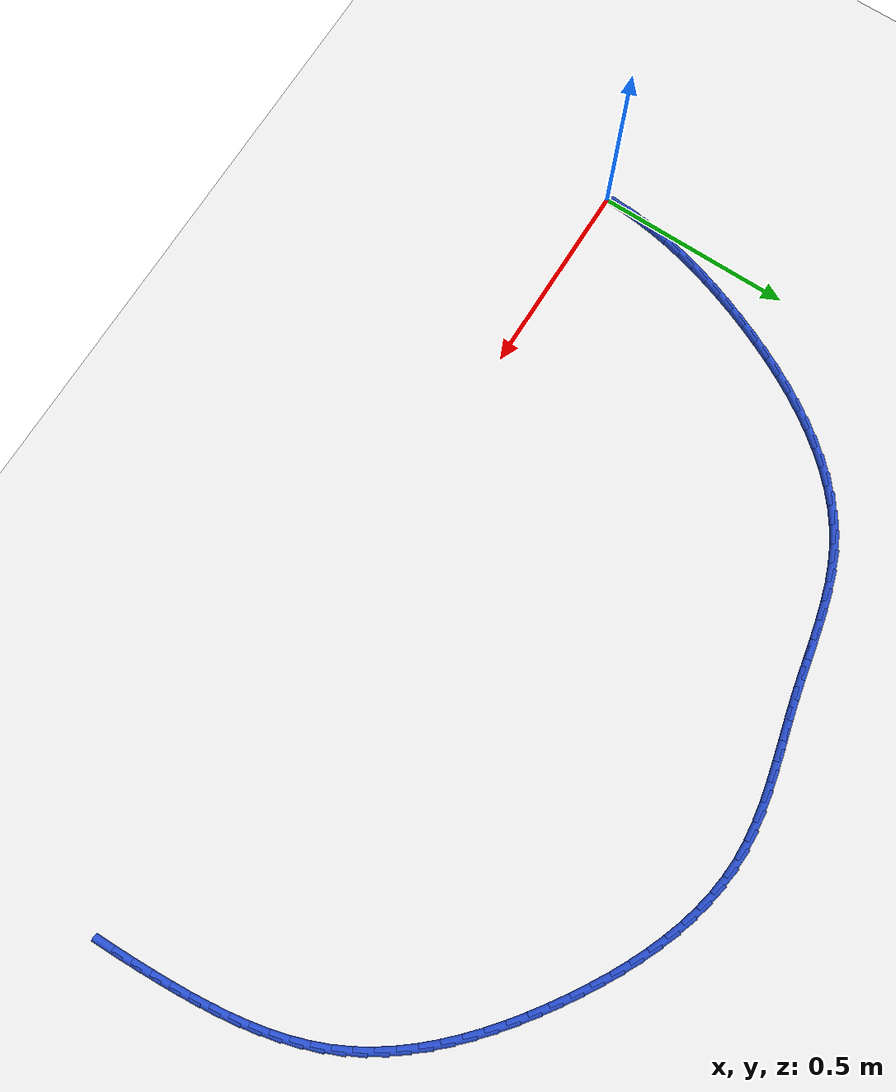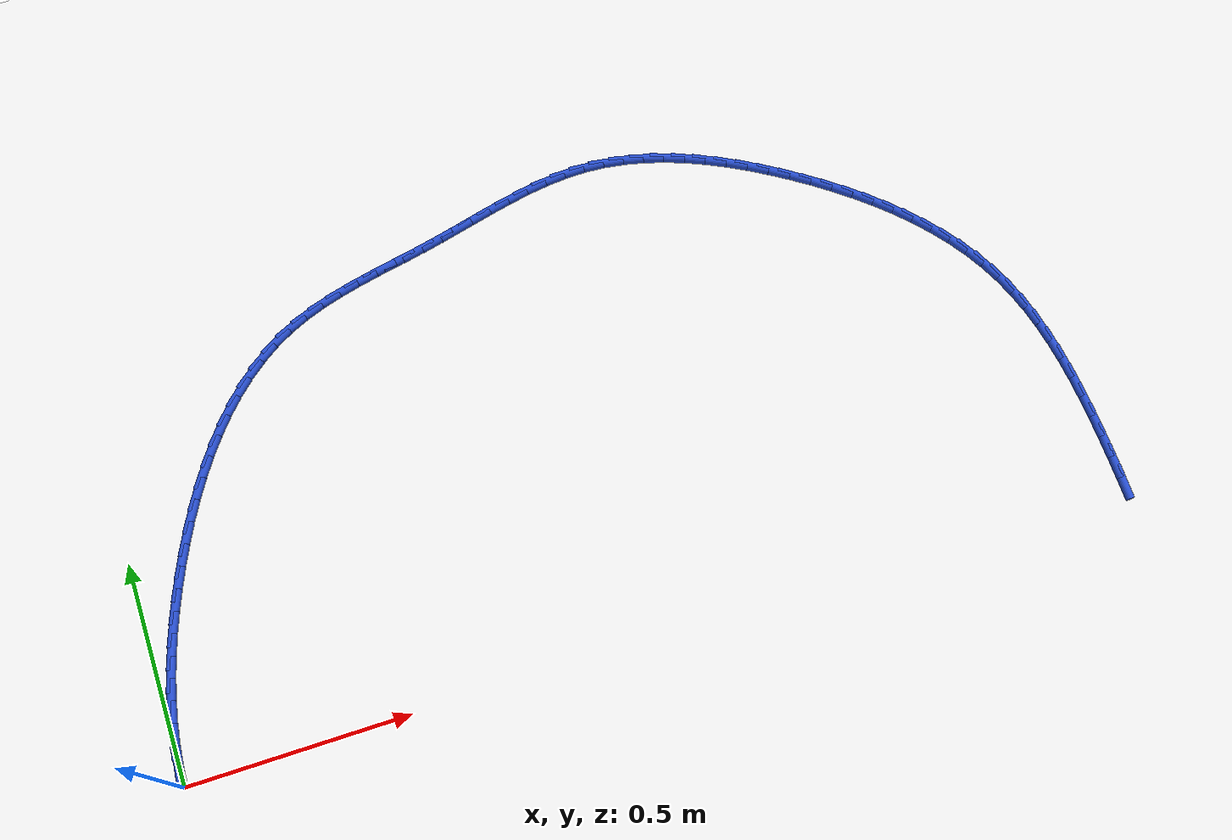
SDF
<sdf version="1.6">
 <world name="default">
  <model name="ground_plane">
   <static>1</static>
   <link name="link">
    <collision name="collision">
     <geometry><plane><normal>0 0 1</normal><size>100 100</size></plane></geometry>
     <surface><friction><ode><mu>100</mu><mu2>50</mu2></ode></friction></surface>
    </collision>
    <visual name="visual">
     <cast_shadows>0</cast_shadows>
     <geometry><plane><normal>0 0 1</normal><size>100 100</size></plane></geometry>
     <material>
      <script><uri>file://media/materials/scripts/gazebo.material</uri><name>Gazebo/WhiteGlow</name></script>
     </material>
    </visual>
   </link>
  </model>
  <model name="line">
   <link name="link_1">
    <pose>0.0019685583259757096 0.04800362464520385 0.01 0 1.57 1.479716273521104</pose>
    <collision name="collision">
     <geometry><cylinder><radius>0.01</radius><length>0.08</length></cylinder></geometry>
    </collision>
    <visual name="visual">
     <material>
      <script><name>Gazebo/Blue</name><uri>file://media/materials/scripts/gazebo.material</uri></script>
     </material>
     <geometry><cylinder><radius>0.01</radius><length>0.08</length></cylinder></geometry>
    </visual>
   </link>
   <link name="link_2">
    <pose>0.006317493180500105 0.09562000608899066 0.01 0 1.57 1.4316950958429615</pose>
    <collision name="collision">
     <geometry><cylinder><radius>0.01</radius><length>0.08</length></cylinder></geometry>
    </collision>
    <visual name="visual">
     <material>
      <script><name>Gazebo/Blue</name><uri>file://media/materials/scripts/gazebo.material</uri></script>
     </material>
     <geometry><cylinder><radius>0.01</radius><length>0.08</length></cylinder></geometry>
    </visual>
   </link>
   <link name="link_3">
    <pose>0.012936102183389237 0.14289396357088413 0.01 0 1.57 1.3860753619875683</pose>
    <collision name="collision">
     <geometry><cylinder><radius>0.01</radius><length>0.08</length></cylinder></geometry>
    </collision>
    <visual name="visual">
     <material>
      <script><name>Gazebo/Blue</name><uri>file://media/materials/scripts/gazebo.material</uri></script>
     </material>
     <geometry><cylinder><radius>0.01</radius><length>0.08</length></cylinder></geometry>
    </visual>
   </link>
   <link name="link_4">
    <pose>0.02171368295445912 0.18987031633040816 0.01 0 1.57 1.3431139589828611</pose>
    <collision name="collision">
     <geometry><cylinder><radius>0.01</radius><length>0.08</length></cylinder></geometry>
    </collision>
    <visual name="visual">
     <material>
      <script><name>Gazebo/Blue</name><uri>file://media/materials/scripts/gazebo.material</uri></script>
     </material>
     <geometry><cylinder><radius>0.01</radius><length>0.08</length></cylinder></geometry>
    </visual>
   </link>
   <link name="link_5">
    <pose>0.032539533113525775 0.23659388360708675 0.01 0 1.57 1.3029972884537147</pose>
    <collision name="collision">
     <geometry><cylinder><radius>0.01</radius><length>0.08</length></cylinder></geometry>
    </collision>
    <visual name="visual">
     <material>
      <script><name>Gazebo/Blue</name><uri>file://media/materials/scripts/gazebo.material</uri></script>
     </material>
     <geometry><cylinder><radius>0.01</radius><length>0.08</length></cylinder></geometry>
    </visual>
   </link>
   <link name="link_6">
    <pose>0.04530295028040521 0.2831094846404437 0.01 0 1.57 1.2658463277626237</pose>
    <collision name="collision">
     <geometry><cylinder><radius>0.01</radius><length>0.08</length></cylinder></geometry>
    </collision>
    <visual name="visual">
     <material>
      <script><name>Gazebo/Blue</name><uri>file://media/materials/scripts/gazebo.material</uri></script>
     </material>
     <geometry><cylinder><radius>0.01</radius><length>0.08</length></cylinder></geometry>
    </visual>
   </link>
   <link name="link_7">
    <pose>0.05989323207491339 0.32946193867000284 0.01 0 1.57 1.2317245821310854</pose>
    <collision name="collision">
     <geometry><cylinder><radius>0.01</radius><length>0.08</length></cylinder></geometry>
    </collision>
    <visual name="visual">
     <material>
      <script><name>Gazebo/Blue</name><uri>file://media/materials/scripts/gazebo.material</uri></script>
     </material>
     <geometry><cylinder><radius>0.01</radius><length>0.08</length></cylinder></geometry>
    </visual>
   </link>
   <link name="link_8">
    <pose>0.0761996761168664 0.3756960649352883 0.01 0 1.57 1.2006475588033874</pose>
    <collision name="collision">
     <geometry><cylinder><radius>0.01</radius><length>0.08</length></cylinder></geometry>
    </collision>
    <visual name="visual">
     <material>
      <script><name>Gazebo/Blue</name><uri>file://media/materials/scripts/gazebo.material</uri></script>
     </material>
     <geometry><cylinder><radius>0.01</radius><length>0.08</length></cylinder></geometry>
    </visual>
   </link>
   <link name="link_9">
    <pose>0.0941115800260802 0.42185668267582377 0.01 0 1.57 1.1722129539264694</pose>
    <collision name="collision">
     <geometry><cylinder><radius>0.01</radius><length>0.08</length></cylinder></geometry>
    </collision>
    <visual name="visual">
     <material>
      <script><name>Gazebo/Blue</name><uri>file://media/materials/scripts/gazebo.material</uri></script>
     </material>
     <geometry><cylinder><radius>0.01</radius><length>0.08</length></cylinder></geometry>
    </visual>
   </link>
   <link name="link_10">
    <pose>0.11352888065028877 0.46796491665800755 0.01 0 1.57 1.1428740697160042</pose>
    <collision name="collision">
     <geometry><cylinder><radius>0.01</radius><length>0.08</length></cylinder></geometry>
    </collision>
    <visual name="visual">
     <material>
      <script><name>Gazebo/Blue</name><uri>file://media/materials/scripts/gazebo.material</uri></script>
     </material>
     <geometry><cylinder><radius>0.01</radius><length>0.08</length></cylinder></geometry>
    </visual>
   </link>
   <link name="link_11">
    <pose>0.1344474933338868 0.5138281393038654 0.01 0 1.57 1.1104981738132114</pose>
    <collision name="collision">
     <geometry><cylinder><radius>0.01</radius><length>0.08</length></cylinder></geometry>
    </collision>
    <visual name="visual">
     <material>
      <script><name>Gazebo/Blue</name><uri>file://media/materials/scripts/gazebo.material</uri></script>
     </material>
     <geometry><cylinder><radius>0.01</radius><length>0.08</length></cylinder></geometry>
    </visual>
   </link>
   <link name="link_12">
    <pose>0.15691422144329 0.5591403910455921 0.01 0 1.57 1.0746743261360279</pose>
    <collision name="collision">
     <geometry><cylinder><radius>0.01</radius><length>0.08</length></cylinder></geometry>
    </collision>
    <visual name="visual">
     <material>
      <script><name>Gazebo/Blue</name><uri>file://media/materials/scripts/gazebo.material</uri></script>
     </material>
     <geometry><cylinder><radius>0.01</radius><length>0.08</length></cylinder></geometry>
    </visual>
   </link>
   <link name="link_13">
    <pose>0.18097633478914657 0.6035946735040698 0.01 0 1.57 1.034955410138871</pose>
    <collision name="collision">
     <geometry><cylinder><radius>0.01</radius><length>0.08</length></cylinder></geometry>
    </collision>
    <visual name="visual">
     <material>
      <script><name>Gazebo/Blue</name><uri>file://media/materials/scripts/gazebo.material</uri></script>
     </material>
     <geometry><cylinder><radius>0.01</radius><length>0.08</length></cylinder></geometry>
    </visual>
   </link>
   <link name="link_14">
    <pose>0.20668110318210464 0.6468839883001797 0.01 0 1.57 0.9908417420385939</pose>
    <collision name="collision">
     <geometry><cylinder><radius>0.01</radius><length>0.08</length></cylinder></geometry>
    </collision>
    <visual name="visual">
     <material>
      <script><name>Gazebo/Blue</name><uri>file://media/materials/scripts/gazebo.material</uri></script>
     </material>
     <geometry><cylinder><radius>0.01</radius><length>0.08</length></cylinder></geometry>
    </visual>
   </link>
   <link name="link_15">
    <pose>0.2340757964328125 0.6887013370548042 0.01 0 1.57 0.9417866814003238</pose>
    <collision name="collision">
     <geometry><cylinder><radius>0.01</radius><length>0.08</length></cylinder></geometry>
    </collision>
    <visual name="visual">
     <material>
      <script><name>Gazebo/Blue</name><uri>file://media/materials/scripts/gazebo.material</uri></script>
     </material>
     <geometry><cylinder><radius>0.01</radius><length>0.08</length></cylinder></geometry>
    </visual>
   </link>
   <link name="link_16">
    <pose>0.2632076843519182 0.7287397213888243 0.01 0 1.57 0.8872112230858543</pose>
    <collision name="collision">
     <geometry><cylinder><radius>0.01</radius><length>0.08</length></cylinder></geometry>
    </collision>
    <visual name="visual">
     <material>
      <script><name>Gazebo/Blue</name><uri>file://media/materials/scripts/gazebo.material</uri></script>
     </material>
     <geometry><cylinder><radius>0.01</radius><length>0.08</length></cylinder></geometry>
    </visual>
   </link>
   <link name="link_17">
    <pose>0.29412403675007 0.7666921429231219 0.01 0 1.57 0.8265325323151879</pose>
    <collision name="collision">
     <geometry><cylinder><radius>0.01</radius><length>0.08</length></cylinder></geometry>
    </collision>
    <visual name="visual">
     <material>
      <script><name>Gazebo/Blue</name><uri>file://media/materials/scripts/gazebo.material</uri></script>
     </material>
     <geometry><cylinder><radius>0.01</radius><length>0.08</length></cylinder></geometry>
    </visual>
   </link>
   <link name="link_18">
    <pose>0.3268721234379157 0.8022516032785786 0.01 0 1.57 0.7592124289744265</pose>
    <collision name="collision">
     <geometry><cylinder><radius>0.01</radius><length>0.08</length></cylinder></geometry>
    </collision>
    <visual name="visual">
     <material>
      <script><name>Gazebo/Blue</name><uri>file://media/materials/scripts/gazebo.material</uri></script>
     </material>
     <geometry><cylinder><radius>0.01</radius><length>0.08</length></cylinder></geometry>
    </visual>
   </link>
   <link name="link_19">
    <pose>0.36149921422610387 0.8351111040760759 0.01 0 1.57 0.684831558198611</pose>
    <collision name="collision">
     <geometry><cylinder><radius>0.01</radius><length>0.08</length></cylinder></geometry>
    </collision>
    <visual name="visual">
     <material>
      <script><name>Gazebo/Blue</name><uri>file://media/materials/scripts/gazebo.material</uri></script>
     </material>
     <geometry><cylinder><radius>0.01</radius><length>0.08</length></cylinder></geometry>
    </visual>
   </link>
   <link name="link_20">
    <pose>0.39805257892528256 0.8649636469364961 0.01 0 1.57 0.6031916091893048</pose>
    <collision name="collision">
     <geometry><cylinder><radius>0.01</radius><length>0.08</length></cylinder></geometry>
    </collision>
    <visual name="visual">
     <material>
      <script><name>Gazebo/Blue</name><uri>file://media/materials/scripts/gazebo.material</uri></script>
     </material>
     <geometry><cylinder><radius>0.01</radius><length>0.08</length></cylinder></geometry>
    </visual>
   </link>
   <link name="link_21">
    <pose>0.43657948734609997 0.8915022334807204 0.01 0 1.57 0.5144476279860516</pose>
    <collision name="collision">
     <geometry><cylinder><radius>0.01</radius><length>0.08</length></cylinder></geometry>
    </collision>
    <visual name="visual">
     <material>
      <script><name>Gazebo/Blue</name><uri>file://media/materials/scripts/gazebo.material</uri></script>
     </material>
     <geometry><cylinder><radius>0.01</radius><length>0.08</length></cylinder></geometry>
    </visual>
   </link>
   <link name="link_22">
    <pose>0.47712707361974827 0.914420237262024 0.01 0 1.57 0.42446266654170306</pose>
    <collision name="collision">
     <geometry><cylinder><radius>0.01</radius><length>0.08</length></cylinder></geometry>
    </collision>
    <visual name="visual">
     <material>
      <script><name>Gazebo/Blue</name><uri>file://media/materials/scripts/gazebo.material</uri></script>
     </material>
     <geometry><cylinder><radius>0.01</radius><length>0.08</length></cylinder></geometry>
    </visual>
   </link>
   <link name="link_23">
    <pose>0.519658344707158 0.9336416461125323 0.01 0 1.57 0.3483937999935151</pose>
    <collision name="collision">
     <geometry><cylinder><radius>0.01</radius><length>0.08</length></cylinder></geometry>
    </collision>
    <visual name="visual">
     <material>
      <script><name>Gazebo/Blue</name><uri>file://media/materials/scripts/gazebo.material</uri></script>
     </material>
     <geometry><cylinder><radius>0.01</radius><length>0.08</length></cylinder></geometry>
    </visual>
   </link>
   <link name="link_24">
    <pose>0.5639088901977909 0.9497138575541899 0.01 0 1.57 0.2889337930426981</pose>
    <collision name="collision">
     <geometry><cylinder><radius>0.01</radius><length>0.08</length></cylinder></geometry>
    </collision>
    <visual name="visual">
     <material>
      <script><name>Gazebo/Blue</name><uri>file://media/materials/scripts/gazebo.material</uri></script>
     </material>
     <geometry><cylinder><radius>0.01</radius><length>0.08</length></cylinder></geometry>
    </visual>
   </link>
   <link name="link_25">
    <pose>0.6095762504589655 0.9632885718436941 0.01 0 1.57 0.2456522877888159</pose>
    <collision name="collision">
     <geometry><cylinder><radius>0.01</radius><length>0.08</length></cylinder></geometry>
    </collision>
    <visual name="visual">
     <material>
      <script><name>Gazebo/Blue</name><uri>file://media/materials/scripts/gazebo.material</uri></script>
     </material>
     <geometry><cylinder><radius>0.01</radius><length>0.08</length></cylinder></geometry>
    </visual>
   </link>
   <link name="link_26">
    <pose>0.6563579658580011 0.9750174892377432 0.01 0 1.57 0.21783711492944408</pose>
    <collision name="collision">
     <geometry><cylinder><radius>0.01</radius><length>0.08</length></cylinder></geometry>
    </collision>
    <visual name="visual">
     <material>
      <script><name>Gazebo/Blue</name><uri>file://media/materials/scripts/gazebo.material</uri></script>
     </material>
     <geometry><cylinder><radius>0.01</radius><length>0.08</length></cylinder></geometry>
    </visual>
   </link>
   <link name="link_27">
    <pose>0.703951576762216 0.9855523099930336 0.01 0 1.57 0.20481665417565642</pose>
    <collision name="collision">
     <geometry><cylinder><radius>0.01</radius><length>0.08</length></cylinder></geometry>
    </collision>
    <visual name="visual">
     <material>
      <script><name>Gazebo/Blue</name><uri>file://media/materials/scripts/gazebo.material</uri></script>
     </material>
     <geometry><cylinder><radius>0.01</radius><length>0.08</length></cylinder></geometry>
    </visual>
   </link>
   <link name="link_28">
    <pose>0.7520546235389295 0.9955447343662636 0.01 0 1.57 0.20613208351510096</pose>
    <collision name="collision">
     <geometry><cylinder><radius>0.01</radius><length>0.08</length></cylinder></geometry>
    </collision>
    <visual name="visual">
     <material>
      <script><name>Gazebo/Blue</name><uri>file://media/materials/scripts/gazebo.material</uri></script>
     </material>
     <geometry><cylinder><radius>0.01</radius><length>0.08</length></cylinder></geometry>
    </visual>
   </link>
   <link name="link_29">
    <pose>0.8003646465554598 1.0056464626141302 0.01 0 1.57 0.22142872966596028</pose>
    <collision name="collision">
     <geometry><cylinder><radius>0.01</radius><length>0.08</length></cylinder></geometry>
    </collision>
    <visual name="visual">
     <material>
      <script><name>Gazebo/Blue</name><uri>file://media/materials/scripts/gazebo.material</uri></script>
     </material>
     <geometry><cylinder><radius>0.01</radius><length>0.08</length></cylinder></geometry>
    </visual>
   </link>
   <link name="link_30">
    <pose>0.8485812869021407 1.0165009963631741 0.01 0 1.57 0.2407440698350381</pose>
    <collision name="collision">
     <geometry><cylinder><radius>0.01</radius><length>0.08</length></cylinder></geometry>
    </collision>
    <visual name="visual">
     <material>
      <script><name>Gazebo/Blue</name><uri>file://media/materials/scripts/gazebo.material</uri></script>
     </material>
     <geometry><cylinder><radius>0.01</radius><length>0.08</length></cylinder></geometry>
    </visual>
   </link>
   <link name="link_31">
    <pose>0.8965271422721968 1.0282719664024116 0.01 0 1.57 0.2487735495055872</pose>
    <collision name="collision">
     <geometry><cylinder><radius>0.01</radius><length>0.08</length></cylinder></geometry>
    </collision>
    <visual name="visual">
     <material>
      <script><name>Gazebo/Blue</name><uri>file://media/materials/scripts/gazebo.material</uri></script>
     </material>
     <geometry><cylinder><radius>0.01</radius><length>0.08</length></cylinder></geometry>
    </visual>
   </link>
   <link name="link_32">
    <pose>0.9442136390724715 1.0403860492555161 0.01 0 1.57 0.24413796565367507</pose>
    <collision name="collision">
     <geometry><cylinder><radius>0.01</radius><length>0.08</length></cylinder></geometry>
    </collision>
    <visual name="visual">
     <material>
      <script><name>Gazebo/Blue</name><uri>file://media/materials/scripts/gazebo.material</uri></script>
     </material>
     <geometry><cylinder><radius>0.01</radius><length>0.08</length></cylinder></geometry>
    </visual>
   </link>
   <link name="link_33">
    <pose>0.9916682437509212 1.0522073209205953 0.01 0 1.57 0.2265707509667855</pose>
    <collision name="collision">
     <geometry><cylinder><radius>0.01</radius><length>0.08</length></cylinder></geometry>
    </collision>
    <visual name="visual">
     <material>
      <script><name>Gazebo/Blue</name><uri>file://media/materials/scripts/gazebo.material</uri></script>
     </material>
     <geometry><cylinder><radius>0.01</radius><length>0.08</length></cylinder></geometry>
    </visual>
   </link>
   <link name="link_34">
    <pose>1.0389184227555015 1.0630998573957577 0.01 0 1.57 0.19562259872470217</pose>
    <collision name="collision">
     <geometry><cylinder><radius>0.01</radius><length>0.08</length></cylinder></geometry>
    </collision>
    <visual name="visual">
     <material>
      <script><name>Gazebo/Blue</name><uri>file://media/materials/scripts/gazebo.material</uri></script>
     </material>
     <geometry><cylinder><radius>0.01</radius><length>0.08</length></cylinder></geometry>
    </visual>
   </link>
   <link name="link_35">
    <pose>1.085991642534169 1.072427734679112 0.01 0 1.57 0.1507388686850639</pose>
    <collision name="collision">
     <geometry><cylinder><radius>0.01</radius><length>0.08</length></cylinder></geometry>
    </collision>
    <visual name="visual">
     <material>
      <script><name>Gazebo/Blue</name><uri>file://media/materials/scripts/gazebo.material</uri></script>
     </material>
     <geometry><cylinder><radius>0.01</radius><length>0.08</length></cylinder></geometry>
    </visual>
   </link>
   <link name="link_36">
    <pose>1.1329153695348793 1.0795550287687663 0.01 0 1.57 0.0914245718982712</pose>
    <collision name="collision">
     <geometry><cylinder><radius>0.01</radius><length>0.08</length></cylinder></geometry>
    </collision>
    <visual name="visual">
     <material>
      <script><name>Gazebo/Blue</name><uri>file://media/materials/scripts/gazebo.material</uri></script>
     </material>
     <geometry><cylinder><radius>0.01</radius><length>0.08</length></cylinder></geometry>
    </visual>
   </link>
   <link name="link_37">
    <pose>1.179717070205589 1.0838458156628292 0.01 0 1.57 0.017519315064775456</pose>
    <collision name="collision">
     <geometry><cylinder><radius>0.01</radius><length>0.08</length></cylinder></geometry>
    </collision>
    <visual name="visual">
     <material>
      <script><name>Gazebo/Blue</name><uri>file://media/materials/scripts/gazebo.material</uri></script>
     </material>
     <geometry><cylinder><radius>0.01</radius><length>0.08</length></cylinder></geometry>
    </visual>
   </link>
   <link name="link_38">
    <pose>1.2264242104224634 1.0846641764952913 0.01 0 1.57 -0.06683782724828961</pose>
    <collision name="collision">
     <geometry><cylinder><radius>0.01</radius><length>0.08</length></cylinder></geometry>
    </collision>
    <visual name="visual">
     <material>
      <script><name>Gazebo/Blue</name><uri>file://media/materials/scripts/gazebo.material</uri></script>
     </material>
     <geometry><cylinder><radius>0.01</radius><length>0.08</length></cylinder></geometry>
    </visual>
   </link>
   <link name="link_39">
    <pose>1.2730454101575142 1.081543468375305 0.01 0 1.57 -0.14763272213773246</pose>
    <collision name="collision">
     <geometry><cylinder><radius>0.01</radius><length>0.08</length></cylinder></geometry>
    </collision>
    <visual name="visual">
     <material>
      <script><name>Gazebo/Blue</name><uri>file://media/materials/scripts/gazebo.material</uri></script>
     </material>
     <geometry><cylinder><radius>0.01</radius><length>0.08</length></cylinder></geometry>
    </visual>
   </link>
   <link name="link_40">
    <pose>1.3195208378295624 1.07463188775973 0.01 0 1.57 -0.22146857922194682</pose>
    <collision name="collision">
     <geometry><cylinder><radius>0.01</radius><length>0.08</length></cylinder></geometry>
    </collision>
    <visual name="visual">
     <material>
      <script><name>Gazebo/Blue</name><uri>file://media/materials/scripts/gazebo.material</uri></script>
     </material>
     <geometry><cylinder><radius>0.01</radius><length>0.08</length></cylinder></geometry>
    </visual>
   </link>
   <link name="link_41">
    <pose>1.3657751252735757 1.0642171824032058 0.01 0 1.57 -0.28831471859771907</pose>
    <collision name="collision">
     <geometry><cylinder><radius>0.01</radius><length>0.08</length></cylinder></geometry>
    </collision>
    <visual name="visual">
     <material>
      <script><name>Gazebo/Blue</name><uri>file://media/materials/scripts/gazebo.material</uri></script>
     </material>
     <geometry><cylinder><radius>0.01</radius><length>0.08</length></cylinder></geometry>
    </visual>
   </link>
   <link name="link_42">
    <pose>1.4117329043245213 1.0505871000603713 0.01 0 1.57 -0.3484032185698907</pose>
    <collision name="collision">
     <geometry><cylinder><radius>0.01</radius><length>0.08</length></cylinder></geometry>
    </collision>
    <visual name="visual">
     <material>
      <script><name>Gazebo/Blue</name><uri>file://media/materials/scripts/gazebo.material</uri></script>
     </material>
     <geometry><cylinder><radius>0.01</radius><length>0.08</length></cylinder></geometry>
    </visual>
   </link>
   <link name="link_43">
    <pose>1.4573188068173657 1.034029388485865 0.01 0 1.57 -0.40212700964414694</pose>
    <collision name="collision">
     <geometry><cylinder><radius>0.01</radius><length>0.08</length></cylinder></geometry>
    </collision>
    <visual name="visual">
     <material>
      <script><name>Gazebo/Blue</name><uri>file://media/materials/scripts/gazebo.material</uri></script>
     </material>
     <geometry><cylinder><radius>0.01</radius><length>0.08</length></cylinder></geometry>
    </visual>
   </link>
   <link name="link_44">
    <pose>1.5024574645870772 1.0148317954343251 0.01 0 1.57 -0.44995857005328366</pose>
    <collision name="collision">
     <geometry><cylinder><radius>0.01</radius><length>0.08</length></cylinder></geometry>
    </collision>
    <visual name="visual">
     <material>
      <script><name>Gazebo/Blue</name><uri>file://media/materials/scripts/gazebo.material</uri></script>
     </material>
     <geometry><cylinder><radius>0.01</radius><length>0.08</length></cylinder></geometry>
    </visual>
   </link>
   <link name="link_45">
    <pose>1.547073509468622 0.9932820686603919 0.01 0 1.57 -0.4923916358469921</pose>
    <collision name="collision">
     <geometry><cylinder><radius>0.01</radius><length>0.08</length></cylinder></geometry>
    </collision>
    <visual name="visual">
     <material>
      <script><name>Gazebo/Blue</name><uri>file://media/materials/scripts/gazebo.material</uri></script>
     </material>
     <geometry><cylinder><radius>0.01</radius><length>0.08</length></cylinder></geometry>
    </visual>
   </link>
   <link name="link_46">
    <pose>1.591091573296969 0.9696679559187029 0.01 0 1.57 -0.5299028755190982</pose>
    <collision name="collision">
     <geometry><cylinder><radius>0.01</radius><length>0.08</length></cylinder></geometry>
    </collision>
    <visual name="visual">
     <material>
      <script><name>Gazebo/Blue</name><uri>file://media/materials/scripts/gazebo.material</uri></script>
     </material>
     <geometry><cylinder><radius>0.01</radius><length>0.08</length></cylinder></geometry>
    </visual>
   </link>
   <link name="link_47">
    <pose>1.6344362879070837 0.9442772049638978 0.01 0 1.57 -0.5629286055693025</pose>
    <collision name="collision">
     <geometry><cylinder><radius>0.01</radius><length>0.08</length></cylinder></geometry>
    </collision>
    <visual name="visual">
     <material>
      <script><name>Gazebo/Blue</name><uri>file://media/materials/scripts/gazebo.material</uri></script>
     </material>
     <geometry><cylinder><radius>0.01</radius><length>0.08</length></cylinder></geometry>
    </visual>
   </link>
   <link name="link_48">
    <pose>1.6770322851339343 0.9173975635506145 0.01 0 1.57 -0.592868454049372</pose>
    <collision name="collision">
     <geometry><cylinder><radius>0.01</radius><length>0.08</length></cylinder></geometry>
    </collision>
    <visual name="visual">
     <material>
      <script><name>Gazebo/Blue</name><uri>file://media/materials/scripts/gazebo.material</uri></script>
     </material>
     <geometry><cylinder><radius>0.01</radius><length>0.08</length></cylinder></geometry>
    </visual>
   </link>
   <link name="link_49">
    <pose>1.7187816655649688 0.8892702525024343 0.01 0 1.57 -0.6246684169122455</pose>
    <collision name="collision">
     <geometry><cylinder><radius>0.01</radius><length>0.08</length></cylinder></geometry>
    </collision>
    <visual name="visual">
     <material>
      <script><name>Gazebo/Blue</name><uri>file://media/materials/scripts/gazebo.material</uri></script>
     </material>
     <geometry><cylinder><radius>0.01</radius><length>0.08</length></cylinder></geometry>
    </visual>
   </link>
   <link name="link_50">
    <pose>1.7594839637620485 0.8599246942328679 0.01 0 1.57 -0.6599403322201002</pose>
    <collision name="collision">
     <geometry><cylinder><radius>0.01</radius><length>0.08</length></cylinder></geometry>
    </collision>
    <visual name="visual">
     <material>
      <script><name>Gazebo/Blue</name><uri>file://media/materials/scripts/gazebo.material</uri></script>
     </material>
     <geometry><cylinder><radius>0.01</radius><length>0.08</length></cylinder></geometry>
    </visual>
   </link>
   <link name="link_51">
    <pose>1.7989095448127657 0.8293300763141392 0.01 0 1.57 -0.6990051994394199</pose>
    <collision name="collision">
     <geometry><cylinder><radius>0.01</radius><length>0.08</length></cylinder></geometry>
    </collision>
    <visual name="visual">
     <material>
      <script><name>Gazebo/Blue</name><uri>file://media/materials/scripts/gazebo.material</uri></script>
     </material>
     <geometry><cylinder><radius>0.01</radius><length>0.08</length></cylinder></geometry>
    </visual>
   </link>
   <link name="link_52">
    <pose>1.8368287717523486 0.7974555820803487 0.01 0 1.57 -0.7422058300582275</pose>
    <collision name="collision">
     <geometry><cylinder><radius>0.01</radius><length>0.08</length></cylinder></geometry>
    </collision>
    <visual name="visual">
     <material>
      <script><name>Gazebo/Blue</name><uri>file://media/materials/scripts/gazebo.material</uri></script>
     </material>
     <geometry><cylinder><radius>0.01</radius><length>0.08</length></cylinder></geometry>
    </visual>
   </link>
   <link name="link_53">
    <pose>1.8730120076160273 0.7642703948655989 0.01 0 1.57 -0.7898943461315423</pose>
    <collision name="collision">
     <geometry><cylinder><radius>0.01</radius><length>0.08</length></cylinder></geometry>
    </collision>
    <visual name="visual">
     <material>
      <script><name>Gazebo/Blue</name><uri>file://media/materials/scripts/gazebo.material</uri></script>
     </material>
     <geometry><cylinder><radius>0.01</radius><length>0.08</length></cylinder></geometry>
    </visual>
   </link>
   <link name="link_54">
    <pose>1.9072296154390294 0.7297436980039909 0.01 0 1.57 -0.8424123129243463</pose>
    <collision name="collision">
     <geometry><cylinder><radius>0.01</radius><length>0.08</length></cylinder></geometry>
    </collision>
    <visual name="visual">
     <material>
      <script><name>Gazebo/Blue</name><uri>file://media/materials/scripts/gazebo.material</uri></script>
     </material>
     <geometry><cylinder><radius>0.01</radius><length>0.08</length></cylinder></geometry>
    </visual>
   </link>
   <link name="link_55">
    <pose>1.9392519582565848 0.6938446748296261 0.01 0 1.57 -0.9000614569259268</pose>
    <collision name="collision">
     <geometry><cylinder><radius>0.01</radius><length>0.08</length></cylinder></geometry>
    </collision>
    <visual name="visual">
     <material>
      <script><name>Gazebo/Blue</name><uri>file://media/materials/scripts/gazebo.material</uri></script>
     </material>
     <geometry><cylinder><radius>0.01</radius><length>0.08</length></cylinder></geometry>
    </visual>
   </link>
   <link name="link_56">
    <pose>1.9688493991039215 0.6565425086766066 0.01 0 1.57 -0.9630633681854971</pose>
    <collision name="collision">
     <geometry><cylinder><radius>0.01</radius><length>0.08</length></cylinder></geometry>
    </collision>
    <visual name="visual">
     <material>
      <script><name>Gazebo/Blue</name><uri>file://media/materials/scripts/gazebo.material</uri></script>
     </material>
     <geometry><cylinder><radius>0.01</radius><length>0.08</length></cylinder></geometry>
    </visual>
   </link>
   <link name="link_57">
    <pose>1.9957923010162693 0.6178063828790332 0.01 0 1.57 -1.0315082246874758</pose>
    <collision name="collision">
     <geometry><cylinder><radius>0.01</radius><length>0.08</length></cylinder></geometry>
    </collision>
    <visual name="visual">
     <material>
      <script><name>Gazebo/Blue</name><uri>file://media/materials/scripts/gazebo.material</uri></script>
     </material>
     <geometry><cylinder><radius>0.01</radius><length>0.08</length></cylinder></geometry>
    </visual>
   </link>
   <link name="link_58">
    <pose>2.0198510270288548 0.5776054807710082 0.01 0 1.57 -1.1051718665667225</pose>
    <collision name="collision">
     <geometry><cylinder><radius>0.01</radius><length>0.08</length></cylinder></geometry>
    </collision>
    <visual name="visual">
     <material>
      <script><name>Gazebo/Blue</name><uri>file://media/materials/scripts/gazebo.material</uri></script>
     </material>
     <geometry><cylinder><radius>0.01</radius><length>0.08</length></cylinder></geometry>
    </visual>
   </link>
   <link name="link_59">
    <pose>2.040801517119994 0.5359107653581479 0.01 0 1.57 -1.1789438649446577</pose>
    <collision name="collision">
     <geometry><cylinder><radius>0.01</radius><length>0.08</length></cylinder></geometry>
    </collision>
    <visual name="visual">
     <material>
      <script><name>Gazebo/Blue</name><uri>file://media/materials/scripts/gazebo.material</uri></script>
     </material>
     <geometry><cylinder><radius>0.01</radius><length>0.08</length></cylinder></geometry>
    </visual>
   </link>
   <link name="link_60">
    <pose>2.0586319771949984 0.49276093632874063 0.01 0 1.57 -1.246106195046439</pose>
    <collision name="collision">
     <geometry><cylinder><radius>0.01</radius><length>0.08</length></cylinder></geometry>
    </collision>
    <visual name="visual">
     <material>
      <script><name>Gazebo/Blue</name><uri>file://media/materials/scripts/gazebo.material</uri></script>
     </material>
     <geometry><cylinder><radius>0.01</radius><length>0.08</length></cylinder></geometry>
    </visual>
   </link>
   <link name="link_61">
    <pose>2.0736037573040944 0.4482818570460393 0.01 0 1.57 -1.3058660643151485</pose>
    <collision name="collision">
     <geometry><cylinder><radius>0.01</radius><length>0.08</length></cylinder></geometry>
    </collision>
    <visual name="visual">
     <material>
      <script><name>Gazebo/Blue</name><uri>file://media/materials/scripts/gazebo.material</uri></script>
     </material>
     <geometry><cylinder><radius>0.01</radius><length>0.08</length></cylinder></geometry>
    </visual>
   </link>
   <link name="link_62">
    <pose>2.085996203288407 0.40260513355275124 0.01 0 1.57 -1.3581458747196922</pose>
    <collision name="collision">
     <geometry><cylinder><radius>0.01</radius><length>0.08</length></cylinder></geometry>
    </collision>
    <visual name="visual">
     <material>
      <script><name>Gazebo/Blue</name><uri>file://media/materials/scripts/gazebo.material</uri></script>
     </material>
     <geometry><cylinder><radius>0.01</radius><length>0.08</length></cylinder></geometry>
    </visual>
   </link>
   <link name="link_63">
    <pose>2.096088660989064 0.3558623718915824 0.01 0 1.57 -1.4030852335873243</pose>
    <collision name="collision">
     <geometry><cylinder><radius>0.01</radius><length>0.08</length></cylinder></geometry>
    </collision>
    <visual name="visual">
     <material>
      <script><name>Gazebo/Blue</name><uri>file://media/materials/scripts/gazebo.material</uri></script>
     </material>
     <geometry><cylinder><radius>0.01</radius><length>0.08</length></cylinder></geometry>
    </visual>
   </link>
   <link name="link_64">
    <pose>2.1041604762471895 0.30818517810524004 0.01 0 1.57 -1.4409510516075943</pose>
    <collision name="collision">
     <geometry><cylinder><radius>0.01</radius><length>0.08</length></cylinder></geometry>
    </collision>
    <visual name="visual">
     <material>
      <script><name>Gazebo/Blue</name><uri>file://media/materials/scripts/gazebo.material</uri></script>
     </material>
     <geometry><cylinder><radius>0.01</radius><length>0.08</length></cylinder></geometry>
    </visual>
   </link>
   <link name="link_65">
    <pose>2.110490994903911 0.25970515823643064 0.01 0 1.57 -1.4720655845754989</pose>
    <collision name="collision">
     <geometry><cylinder><radius>0.01</radius><length>0.08</length></cylinder></geometry>
    </collision>
    <visual name="visual">
     <material>
      <script><name>Gazebo/Blue</name><uri>file://media/materials/scripts/gazebo.material</uri></script>
     </material>
     <geometry><cylinder><radius>0.01</radius><length>0.08</length></cylinder></geometry>
    </visual>
   </link>
   <link name="link_66">
    <pose>2.1153595628003523 0.21055391832786036 0.01 0 1.57 -1.4967540348777757</pose>
    <collision name="collision">
     <geometry><cylinder><radius>0.01</radius><length>0.08</length></cylinder></geometry>
    </collision>
    <visual name="visual">
     <material>
      <script><name>Gazebo/Blue</name><uri>file://media/materials/scripts/gazebo.material</uri></script>
     </material>
     <geometry><cylinder><radius>0.01</radius><length>0.08</length></cylinder></geometry>
    </visual>
   </link>
   <link name="link_67">
    <pose>2.1190455257776417 0.16086306442223658 0.01 0 1.57 -1.5153090885168579</pose>
    <collision name="collision">
     <geometry><cylinder><radius>0.01</radius><length>0.08</length></cylinder></geometry>
    </collision>
    <visual name="visual">
     <material>
      <script><name>Gazebo/Blue</name><uri>file://media/materials/scripts/gazebo.material</uri></script>
     </material>
     <geometry><cylinder><radius>0.01</radius><length>0.08</length></cylinder></geometry>
    </visual>
   </link>
   <link name="link_68">
    <pose>2.121828229676903 0.11076420256226528 0.01 0 1.57 -1.5281952262705571</pose>
    <collision name="collision">
     <geometry><cylinder><radius>0.01</radius><length>0.08</length></cylinder></geometry>
    </collision>
    <visual name="visual">
     <material>
      <script><name>Gazebo/Blue</name><uri>file://media/materials/scripts/gazebo.material</uri></script>
     </material>
     <geometry><cylinder><radius>0.01</radius><length>0.08</length></cylinder></geometry>
    </visual>
   </link>
   <link name="link_69">
    <pose>2.1239755420799225 0.06038960659933465 0.01 0 1.57 -1.5406486295381716</pose>
    <collision name="collision">
     <geometry><cylinder><radius>0.01</radius><length>0.08</length></cylinder></geometry>
    </collision>
    <visual name="visual">
     <material>
      <script><name>Gazebo/Blue</name><uri>file://media/materials/scripts/gazebo.material</uri></script>
     </material>
     <geometry><cylinder><radius>0.01</radius><length>0.08</length></cylinder></geometry>
    </visual>
   </link>
   <link name="link_70">
    <pose>2.1254985562040076 0.00988648959682385 0.01 0 1.57 -1.557779633722031</pose>
    <collision name="collision">
     <geometry><cylinder><radius>0.01</radius><length>0.08</length></cylinder></geometry>
    </collision>
    <visual name="visual">
     <material>
      <script><name>Gazebo/Blue</name><uri>file://media/materials/scripts/gazebo.material</uri></script>
     </material>
     <geometry><cylinder><radius>0.01</radius><length>0.08</length></cylinder></geometry>
    </visual>
   </link>
   <link name="link_141">
    <pose>0.001988167466426962 0.047956969107993394 0.01 0 1.57 1.5293627322804422</pose>
    <collision name="collision">
     <geometry><cylinder><radius>0.01</radius><length>0.08</length></cylinder></geometry>
    </collision>
    <visual name="visual">
     <material>
      <script><name>Gazebo/Blue</name><uri>file://media/materials/scripts/gazebo.material</uri></script>
     </material>
     <geometry><cylinder><radius>0.01</radius><length>0.08</length></cylinder></geometry>
    </visual>
   </link>
  </model>
 </world>
</sdf>
